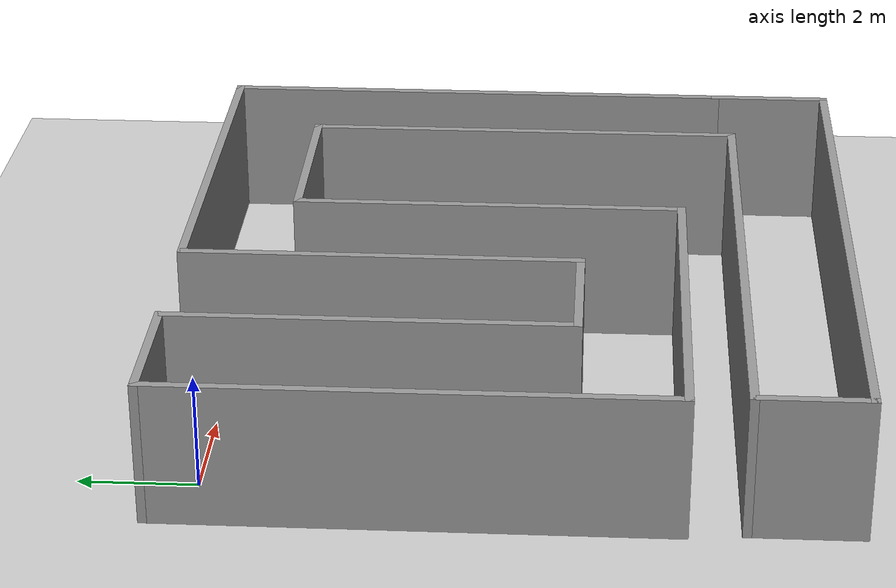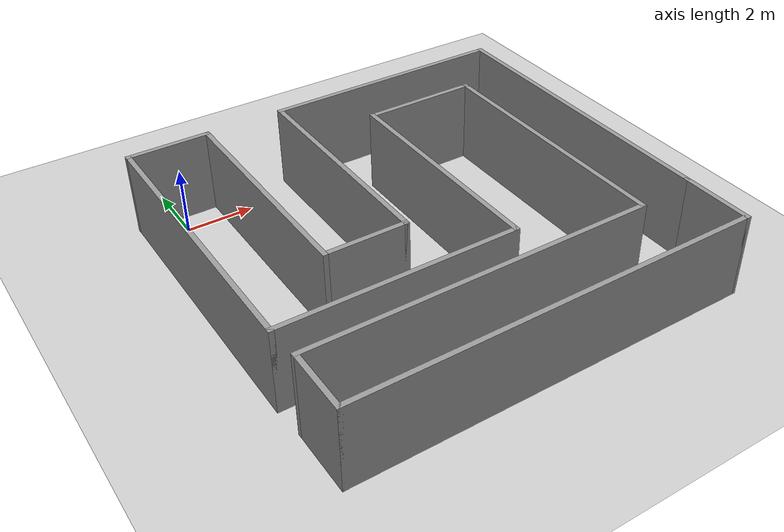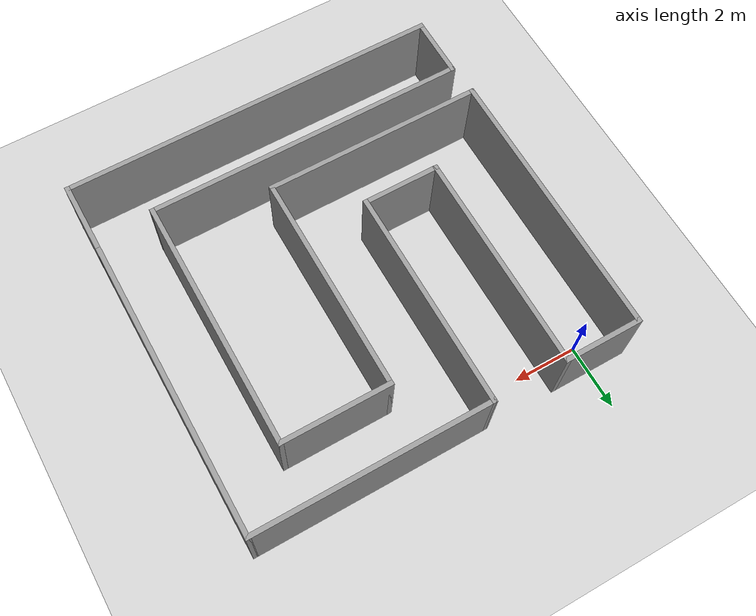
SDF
<sdf version="1.6">
 <world name="default">
  <light name="sun" type="directional">
   <pose>0 0 10 0 -0 0</pose>
   <diffuse>0.8 0.8 0.8 1</diffuse>
   <specular>0.2 0.2 0.2 1</specular>
   <attenuation>
    <range>1000</range>
    <constant>0.9</constant>
    <linear>0.01</linear>
    <quadratic>0.001</quadratic>
   </attenuation>
   <direction>-0.5 0.1 -0.9</direction>
  </light>
  <model name="ground_plane">
   <static>1</static>
   <link name="link">
    <collision name="collision">
     <geometry><plane><normal>0 0 1</normal><size>100 100</size></plane></geometry>
     <surface><friction><ode><mu>100</mu><mu2>50</mu2></ode></friction></surface>
    </collision>
    <visual name="visual">
     <cast_shadows>0</cast_shadows>
     <geometry><plane><normal>0 0 1</normal><size>100 100</size></plane></geometry>
     <material>
      <script><uri>file://media/materials/scripts/gazebo.material</uri><name>Gazebo/Grey</name></script>
     </material>
    </visual>
   </link>
  </model>
  <gravity>0 0 -9.8</gravity>
  <magnetic_field>6e-06 2.3e-05 -4.2e-05</magnetic_field>
  <atmosphere type="adiabatic"/>
  <physics name="default_physics" default="0" type="ode">
   <max_step_size>0.001</max_step_size>
   <real_time_factor>1</real_time_factor>
   <real_time_update_rate>1000</real_time_update_rate>
  </physics>
  <scene><ambient>0.4 0.4 0.4 1</ambient><background>0.7 0.7 0.7 1</background><shadows>1</shadows></scene>
  <spherical_coordinates>
   <surface_model>EARTH_WGS84</surface_model>
   <latitude_deg>0</latitude_deg>
   <longitude_deg>0</longitude_deg>
   <elevation>0</elevation>
   <heading_deg>0</heading_deg>
  </spherical_coordinates>
  <model name="Untitled4">
   <pose>4.90613 -4.99883 0 0 -0 0</pose>
   <link name="Wall_10">
    <collision name="Wall_10_Collision">
     <geometry><box><size>7 0.15 2.5</size></box></geometry>
     <pose>0 0 1.25 0 -0 0</pose>
    </collision>
    <visual name="Wall_10_Visual">
     <pose>0 0 1.25 0 -0 0</pose>
     <geometry><box><size>7 0.15 2.5</size></box></geometry>
     <material>
      <script><uri>file://media/materials/scripts/gazebo.material</uri><name>Gazebo/Grey</name></script>
      <ambient>1 1 1 1</ambient>
     </material>
     <meta><layer>0</layer></meta>
    </visual>
    <pose>-2.6 -2.875 0 0 -0 0</pose>
   </link>
   <link name="Wall_11">
    <collision name="Wall_11_Collision">
     <geometry><box><size>7 0.15 2.5</size></box></geometry>
     <pose>0 0 1.25 0 -0 0</pose>
    </collision>
    <visual name="Wall_11_Visual">
     <pose>0 0 1.25 0 -0 0</pose>
     <geometry><box><size>7 0.15 2.5</size></box></geometry>
     <material>
      <script><uri>file://media/materials/scripts/gazebo.material</uri><name>Gazebo/Grey</name></script>
      <ambient>1 1 1 1</ambient>
     </material>
     <meta><layer>0</layer></meta>
    </visual>
    <pose>0.825 0.55 0 0 -0 1.5708</pose>
   </link>
   <link name="Wall_12">
    <collision name="Wall_12_Collision">
     <geometry><box><size>3.5 0.15 2.5</size></box></geometry>
     <pose>0 0 1.25 0 -0 0</pose>
    </collision>
    <visual name="Wall_12_Visual">
     <pose>0 0 1.25 0 -0 0</pose>
     <geometry><box><size>3.5 0.15 2.5</size></box></geometry>
     <material>
      <script><uri>file://media/materials/scripts/gazebo.material</uri><name>Gazebo/Grey</name></script>
      <ambient>1 1 1 1</ambient>
     </material>
     <meta><layer>0</layer></meta>
    </visual>
    <pose>2.5 3.975 0 0 -0 0</pose>
   </link>
   <link name="Wall_13">
    <collision name="Wall_13_Collision">
     <geometry><box><size>8 0.15 2.5</size></box></geometry>
     <pose>0 0 1.25 0 -0 0</pose>
    </collision>
    <visual name="Wall_13_Visual">
     <pose>0 0 1.25 0 -0 0</pose>
     <geometry><box><size>8 0.15 2.5</size></box></geometry>
     <material>
      <script><uri>file://media/materials/scripts/gazebo.material</uri><name>Gazebo/Grey</name></script>
      <ambient>1 1 1 1</ambient>
     </material>
     <meta><layer>0</layer></meta>
    </visual>
    <pose>4.175 0.05 0 0 0 -1.5708</pose>
   </link>
   <link name="Wall_14">
    <collision name="Wall_14_Collision">
     <geometry><box><size>10.25 0.15 2.5</size></box></geometry>
     <pose>0 0 1.25 0 -0 0</pose>
    </collision>
    <visual name="Wall_14_Visual">
     <pose>0 0 1.25 0 -0 0</pose>
     <geometry><box><size>10.25 0.15 2.5</size></box></geometry>
     <material>
      <script><uri>file://media/materials/scripts/gazebo.material</uri><name>Gazebo/Grey</name></script>
      <ambient>1 1 1 1</ambient>
     </material>
     <meta><layer>0</layer></meta>
    </visual>
    <pose>-0.875 -3.875 0 0 -0 3.14159</pose>
   </link>
   <link name="Wall_15">
    <collision name="Wall_15_Collision">
     <geometry><box><size>2 0.15 2.5</size></box></geometry>
     <pose>0 0 1.25 0 -0 0</pose>
    </collision>
    <visual name="Wall_15_Visual">
     <pose>0 0 1.25 0 -0 0</pose>
     <geometry><box><size>2 0.15 2.5</size></box></geometry>
     <material>
      <script><uri>file://media/materials/scripts/gazebo.material</uri><name>Gazebo/Grey</name></script>
      <ambient>1 1 1 1</ambient>
     </material>
     <meta><layer>0</layer></meta>
    </visual>
    <pose>-5.925 -4.8 0 0 0 -1.5708</pose>
   </link>
   <link name="Wall_16">
    <collision name="Wall_16_Collision">
     <geometry><box><size>12 0.15 2.5</size></box></geometry>
     <pose>0 0 1.25 0 -0 0</pose>
    </collision>
    <visual name="Wall_16_Visual">
     <pose>0 0 1.25 0 -0 0</pose>
     <geometry><box><size>12 0.15 2.5</size></box></geometry>
     <material>
      <script><uri>file://media/materials/scripts/gazebo.material</uri><name>Gazebo/Grey</name></script>
      <ambient>1 1 1 1</ambient>
     </material>
     <meta><layer>0</layer></meta>
    </visual>
    <pose>0 -5.725 0 0 -0 0</pose>
   </link>
   <link name="Wall_19">
    <collision name="Wall_19_Collision">
     <geometry><box><size>2.25 0.15 2.5</size></box></geometry>
     <pose>0 0 1.25 0 -0 0</pose>
    </collision>
    <visual name="Wall_19_Visual">
     <pose>0 0 1.25 0 -0 0</pose>
     <geometry><box><size>2.25 0.15 2.5</size></box></geometry>
     <material>
      <script><uri>file://media/materials/scripts/gazebo.material</uri><name>Gazebo/Grey</name></script>
      <ambient>1 1 1 1</ambient>
     </material>
     <meta><layer>0</layer></meta>
    </visual>
    <pose>6.025 -4.675 0 0 0 -1.5708</pose>
   </link>
   <link name="Wall_2">
    <collision name="Wall_2_Collision">
     <geometry><box><size>7 0.15 2.5</size></box></geometry>
     <pose>0 0 1.25 0 -0 0</pose>
    </collision>
    <visual name="Wall_2_Visual">
     <pose>0 0 1.25 0 -0 0</pose>
     <geometry><box><size>7 0.15 2.5</size></box></geometry>
     <material>
      <script><uri>file://media/materials/scripts/gazebo.material</uri><name>Gazebo/Grey</name></script>
      <ambient>1 1 1 1</ambient>
     </material>
     <meta><layer>0</layer></meta>
    </visual>
    <pose>-3.675 2.3 0 0 0 -1.5708</pose>
   </link>
   <link name="Wall_3">
    <collision name="Wall_3_Collision">
     <geometry><box><size>2.5 0.15 2.5</size></box></geometry>
     <pose>0 0 1.25 0 -0 0</pose>
    </collision>
    <visual name="Wall_3_Visual">
     <pose>0 0 1.25 0 -0 0</pose>
     <geometry><box><size>2.5 0.15 2.5</size></box></geometry>
     <material>
      <script><uri>file://media/materials/scripts/gazebo.material</uri><name>Gazebo/Grey</name></script>
      <ambient>1 1 1 1</ambient>
     </material>
     <meta><layer>0</layer></meta>
    </visual>
    <pose>-2.5 -1.125 0 0 -0 0</pose>
   </link>
   <link name="Wall_4">
    <collision name="Wall_4_Collision">
     <geometry><box><size>7 0.15 2.5</size></box></geometry>
     <pose>0 0 1.25 0 -0 0</pose>
    </collision>
    <visual name="Wall_4_Visual">
     <pose>0 0 1.25 0 -0 0</pose>
     <geometry><box><size>7 0.15 2.5</size></box></geometry>
     <material>
      <script><uri>file://media/materials/scripts/gazebo.material</uri><name>Gazebo/Grey</name></script>
      <ambient>1 1 1 1</ambient>
     </material>
     <meta><layer>0</layer></meta>
    </visual>
    <pose>-1.325 2.3 0 0 -0 1.5708</pose>
   </link>
   <link name="Wall_5">
    <collision name="Wall_5_Collision">
     <geometry><box><size>7.5 0.15 2.5</size></box></geometry>
     <pose>0 0 1.25 0 -0 0</pose>
    </collision>
    <visual name="Wall_5_Visual">
     <pose>0 0 1.25 0 -0 0</pose>
     <geometry><box><size>7.5 0.15 2.5</size></box></geometry>
     <material>
      <script><uri>file://media/materials/scripts/gazebo.material</uri><name>Gazebo/Grey</name></script>
      <ambient>1 1 1 1</ambient>
     </material>
     <meta><layer>0</layer></meta>
    </visual>
    <pose>2.35 5.725 0 0 -0 0</pose>
   </link>
   <link name="Wall_6">
    <collision name="Wall_6_Collision">
     <geometry><box><size>9.5 0.15 2.5</size></box></geometry>
     <pose>0 0 1.25 0 -0 0</pose>
    </collision>
    <visual name="Wall_6_Visual">
     <pose>0 0 1.25 0 -0 0</pose>
     <geometry><box><size>9.5 0.15 2.5</size></box></geometry>
     <material>
      <script><uri>file://media/materials/scripts/gazebo.material</uri><name>Gazebo/Grey</name></script>
      <ambient>1 1 1 1</ambient>
     </material>
     <meta><layer>0</layer></meta>
    </visual>
    <pose>6.025 1.05 0 0 0 -1.5708</pose>
   </link>
   <link name="Wall_8">
    <collision name="Wall_8_Collision">
     <geometry><box><size>2.5 0.15 2.5</size></box></geometry>
     <pose>0 0 1.25 0 -0 0</pose>
    </collision>
    <visual name="Wall_8_Visual">
     <pose>0 0 1.25 0 -0 0</pose>
     <geometry><box><size>2.5 0.15 2.5</size></box></geometry>
     <material>
      <script><uri>file://media/materials/scripts/gazebo.material</uri><name>Gazebo/Grey</name></script>
      <ambient>1 1 1 1</ambient>
     </material>
     <meta><layer>0</layer></meta>
    </visual>
    <pose>-4.85 5.725 0 0 -0 3.14159</pose>
   </link>
   <link name="Wall_9">
    <collision name="Wall_9_Collision">
     <geometry><box><size>8.75 0.15 2.5</size></box></geometry>
     <pose>0 0 1.25 0 -0 0</pose>
    </collision>
    <visual name="Wall_9_Visual">
     <pose>0 0 1.25 0 -0 0</pose>
     <geometry><box><size>8.75 0.15 2.5</size></box></geometry>
     <material>
      <script><uri>file://media/materials/scripts/gazebo.material</uri><name>Gazebo/Grey</name></script>
      <ambient>1 1 1 1</ambient>
     </material>
     <meta><layer>0</layer></meta>
    </visual>
    <pose>-6.025 1.425 0 0 0 -1.5708</pose>
   </link>
   <static>1</static>
  </model>
 </world>
</sdf>
